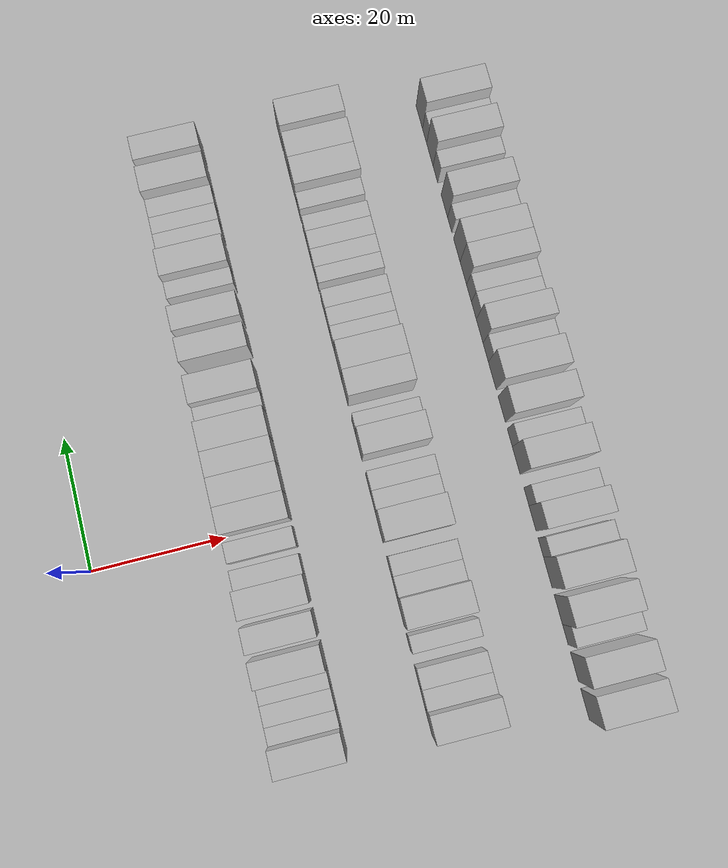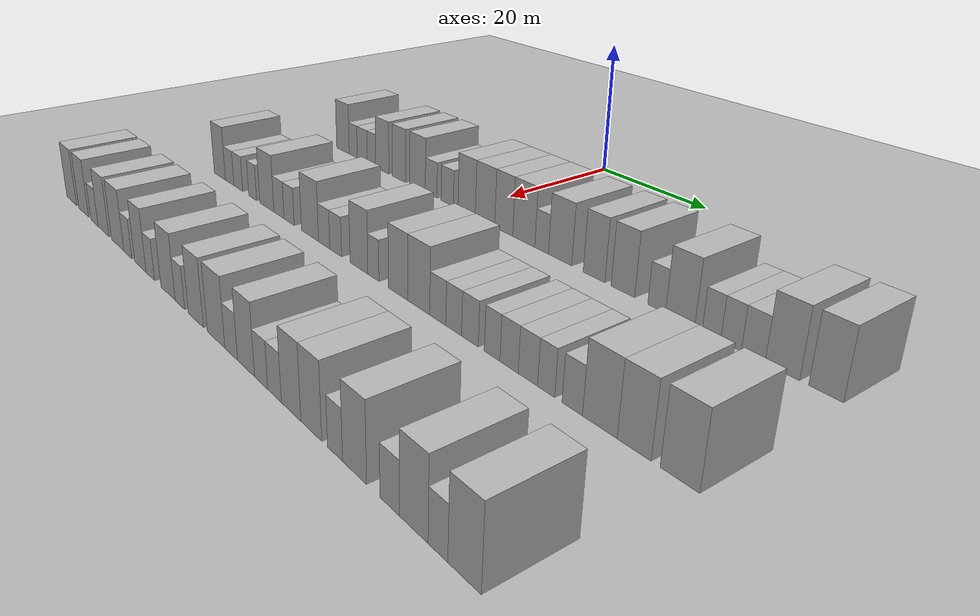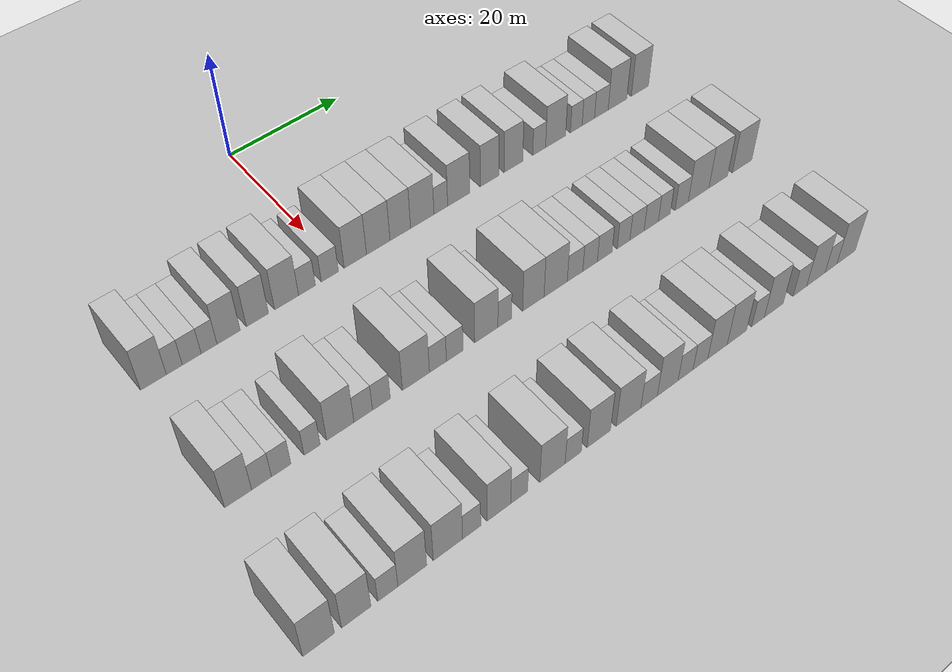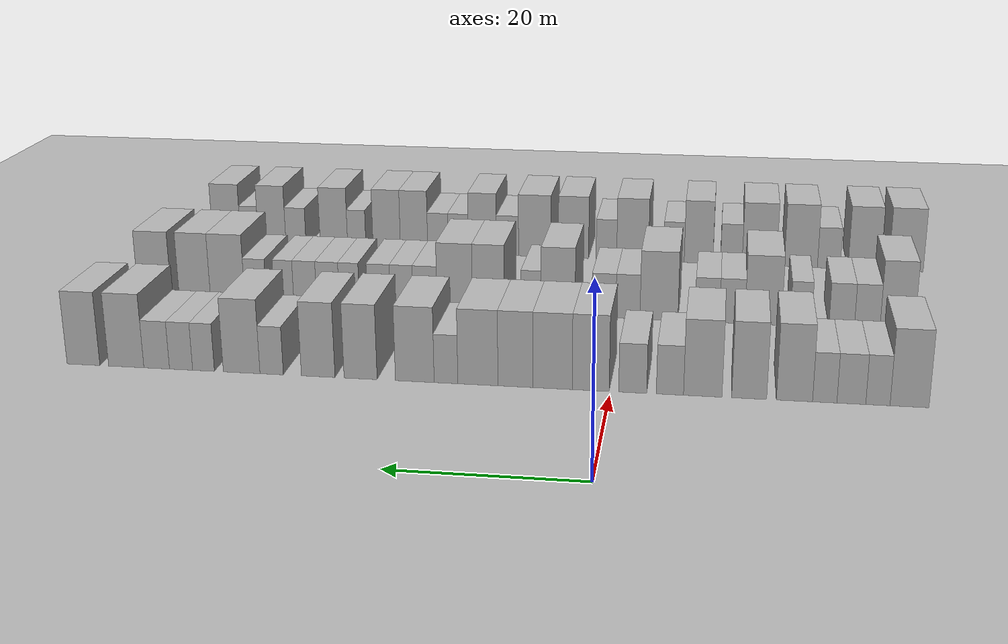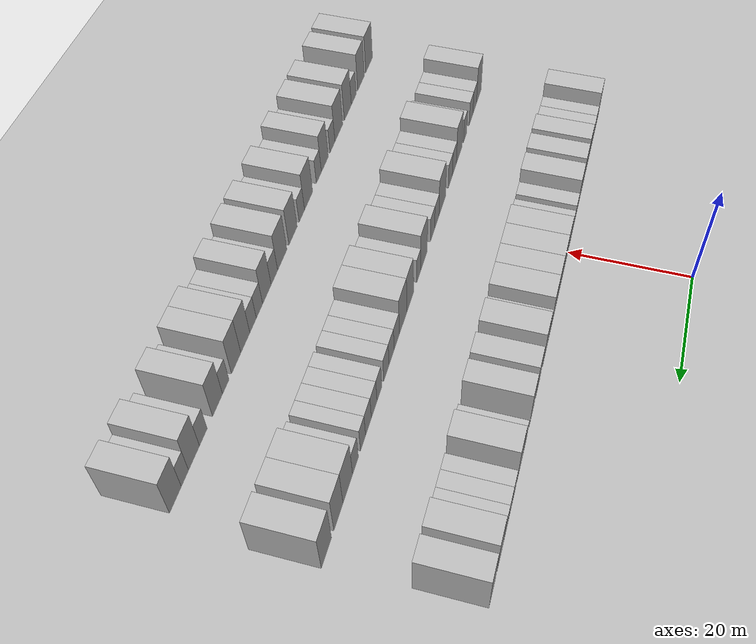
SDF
<sdf version="1.6">
 <world name="default">
  <include><name>ground_plane_1</name><uri>model://HANNAS_ground_plane</uri></include>
  <include>
   <name>ground_plane_2</name>
   <uri>model://HANNAS_ground_plane</uri>
   <pose>100 0 0  0 0 0</pose>
  </include>
  <model name="building_54">
   <static>1</static>
   <pose>25.0000 -30.8141 0 0.000000 0.000000 0.000000</pose>
   <link name="link">
    <pose>0 0 4.50 0 0 0</pose>
    <collision name="collision"><geometry><box><size>10.0000 3.9146 9.0000</size></box></geometry></collision>
    <visual name="visual">
     <cast_shadows>0</cast_shadows>
     <geometry><box><size>10.0000 3.9146 9.0000</size></box></geometry>
     <material>
      <script>
       <uri>model://HANNAS_wall/materials/scripts</uri>
       <uri>model://HANNAS_wall/materials/textures</uri>
       <name>vrc/HANNAS_wall</name>
      </script>
     </material>
    </visual>
   </link>
  </model>
  <model name="building_55">
   <static>1</static>
   <pose>25.0000 -27.6327 0 0.000000 0.000000 0.000000</pose>
   <link name="link">
    <pose>0 0 3.00 0 0 0</pose>
    <collision name="collision"><geometry><box><size>10.0000 2.4482 6.0000</size></box></geometry></collision>
    <visual name="visual">
     <cast_shadows>0</cast_shadows>
     <geometry><box><size>10.0000 2.4482 6.0000</size></box></geometry>
     <material>
      <script>
       <uri>model://HANNAS_wall/materials/scripts</uri>
       <uri>model://HANNAS_wall/materials/textures</uri>
       <name>vrc/HANNAS_wall</name>
      </script>
     </material>
    </visual>
   </link>
  </model>
  <model name="building_56">
   <static>1</static>
   <pose>25.0000 -24.9484 0 0.000000 0.000000 0.000000</pose>
   <link name="link">
    <pose>0 0 3.00 0 0 0</pose>
    <collision name="collision"><geometry><box><size>10.0000 2.9204 6.0000</size></box></geometry></collision>
    <visual name="visual">
     <cast_shadows>0</cast_shadows>
     <geometry><box><size>10.0000 2.9204 6.0000</size></box></geometry>
     <material>
      <script>
       <uri>model://HANNAS_wall/materials/scripts</uri>
       <uri>model://HANNAS_wall/materials/textures</uri>
       <name>vrc/HANNAS_wall</name>
      </script>
     </material>
    </visual>
   </link>
  </model>
  <model name="building_57">
   <static>1</static>
   <pose>25.0000 -22.2467 0 0.000000 0.000000 0.000000</pose>
   <link name="link">
    <pose>0 0 3.00 0 0 0</pose>
    <collision name="collision"><geometry><box><size>10.0000 2.4829 6.0000</size></box></geometry></collision>
    <visual name="visual">
     <cast_shadows>0</cast_shadows>
     <geometry><box><size>10.0000 2.4829 6.0000</size></box></geometry>
     <material>
      <script>
       <uri>model://HANNAS_wall/materials/scripts</uri>
       <uri>model://HANNAS_wall/materials/textures</uri>
       <name>vrc/HANNAS_wall</name>
      </script>
     </material>
    </visual>
   </link>
  </model>
  <model name="building_58">
   <static>1</static>
   <pose>25.0000 -19.1601 0 0.000000 0.000000 0.000000</pose>
   <link name="link">
    <pose>0 0 4.50 0 0 0</pose>
    <collision name="collision"><geometry><box><size>10.0000 3.6903 9.0000</size></box></geometry></collision>
    <visual name="visual">
     <cast_shadows>0</cast_shadows>
     <geometry><box><size>10.0000 3.6903 9.0000</size></box></geometry>
     <material>
      <script>
       <uri>model://HANNAS_wall/materials/scripts</uri>
       <uri>model://HANNAS_wall/materials/textures</uri>
       <name>vrc/HANNAS_wall</name>
      </script>
     </material>
    </visual>
   </link>
  </model>
  <model name="building_59">
   <static>1</static>
   <pose>25.0000 -14.5144 0 0.000000 0.000000 0.000000</pose>
   <link name="link">
    <pose>0 0 4.50 0 0 0</pose>
    <collision name="collision"><geometry><box><size>10.0000 3.6012 9.0000</size></box></geometry></collision>
    <visual name="visual">
     <cast_shadows>0</cast_shadows>
     <geometry><box><size>10.0000 3.6012 9.0000</size></box></geometry>
     <material>
      <script>
       <uri>model://HANNAS_wall/materials/scripts</uri>
       <uri>model://HANNAS_wall/materials/textures</uri>
       <name>vrc/HANNAS_wall</name>
      </script>
     </material>
    </visual>
   </link>
  </model>
  <model name="building_60">
   <static>1</static>
   <pose>25.0000 -9.7171 0 0.000000 0.000000 0.000000</pose>
   <link name="link">
    <pose>0 0 4.50 0 0 0</pose>
    <collision name="collision"><geometry><box><size>10.0000 3.9933 9.0000</size></box></geometry></collision>
    <visual name="visual">
     <cast_shadows>0</cast_shadows>
     <geometry><box><size>10.0000 3.9933 9.0000</size></box></geometry>
     <material>
      <script>
       <uri>model://HANNAS_wall/materials/scripts</uri>
       <uri>model://HANNAS_wall/materials/textures</uri>
       <name>vrc/HANNAS_wall</name>
      </script>
     </material>
    </visual>
   </link>
  </model>
  <model name="building_61">
   <static>1</static>
   <pose>25.0000 -6.3009 0 0.000000 0.000000 0.000000</pose>
   <link name="link">
    <pose>0 0 3.00 0 0 0</pose>
    <collision name="collision"><geometry><box><size>10.0000 2.8391 6.0000</size></box></geometry></collision>
    <visual name="visual">
     <cast_shadows>0</cast_shadows>
     <geometry><box><size>10.0000 2.8391 6.0000</size></box></geometry>
     <material>
      <script>
       <uri>model://HANNAS_wall/materials/scripts</uri>
       <uri>model://HANNAS_wall/materials/textures</uri>
       <name>vrc/HANNAS_wall</name>
      </script>
     </material>
    </visual>
   </link>
  </model>
  <model name="building_62">
   <static>1</static>
   <pose>25.0000 -2.4091 0 0.000000 0.000000 0.000000</pose>
   <link name="link">
    <pose>0 0 3.00 0 0 0</pose>
    <collision name="collision"><geometry><box><size>10.0000 2.9446 6.0000</size></box></geometry></collision>
    <visual name="visual">
     <cast_shadows>0</cast_shadows>
     <geometry><box><size>10.0000 2.9446 6.0000</size></box></geometry>
     <material>
      <script>
       <uri>model://HANNAS_wall/materials/scripts</uri>
       <uri>model://HANNAS_wall/materials/textures</uri>
       <name>vrc/HANNAS_wall</name>
      </script>
     </material>
    </visual>
   </link>
  </model>
  <model name="building_63">
   <static>1</static>
   <pose>25.0000 2.0167 0 0.000000 0.000000 0.000000</pose>
   <link name="link">
    <pose>0 0 4.50 0 0 0</pose>
    <collision name="collision"><geometry><box><size>10.0000 3.9069 9.0000</size></box></geometry></collision>
    <visual name="visual">
     <cast_shadows>0</cast_shadows>
     <geometry><box><size>10.0000 3.9069 9.0000</size></box></geometry>
     <material>
      <script>
       <uri>model://HANNAS_wall/materials/scripts</uri>
       <uri>model://HANNAS_wall/materials/textures</uri>
       <name>vrc/HANNAS_wall</name>
      </script>
     </material>
    </visual>
   </link>
  </model>
  <model name="building_64">
   <static>1</static>
   <pose>25.0000 6.0637 0 0.000000 0.000000 0.000000</pose>
   <link name="link">
    <pose>0 0 4.50 0 0 0</pose>
    <collision name="collision"><geometry><box><size>10.0000 4.1870 9.0000</size></box></geometry></collision>
    <visual name="visual">
     <cast_shadows>0</cast_shadows>
     <geometry><box><size>10.0000 4.1870 9.0000</size></box></geometry>
     <material>
      <script>
       <uri>model://HANNAS_wall/materials/scripts</uri>
       <uri>model://HANNAS_wall/materials/textures</uri>
       <name>vrc/HANNAS_wall</name>
      </script>
     </material>
    </visual>
   </link>
  </model>
  <model name="building_65">
   <static>1</static>
   <pose>25.0000 10.0209 0 0.000000 0.000000 0.000000</pose>
   <link name="link">
    <pose>0 0 4.50 0 0 0</pose>
    <collision name="collision"><geometry><box><size>10.0000 3.7274 9.0000</size></box></geometry></collision>
    <visual name="visual">
     <cast_shadows>0</cast_shadows>
     <geometry><box><size>10.0000 3.7274 9.0000</size></box></geometry>
     <material>
      <script>
       <uri>model://HANNAS_wall/materials/scripts</uri>
       <uri>model://HANNAS_wall/materials/textures</uri>
       <name>vrc/HANNAS_wall</name>
      </script>
     </material>
    </visual>
   </link>
  </model>
  <model name="building_66">
   <static>1</static>
   <pose>25.0000 14.0433 0 0.000000 0.000000 0.000000</pose>
   <link name="link">
    <pose>0 0 4.50 0 0 0</pose>
    <collision name="collision"><geometry><box><size>10.0000 4.3173 9.0000</size></box></geometry></collision>
    <visual name="visual">
     <cast_shadows>0</cast_shadows>
     <geometry><box><size>10.0000 4.3173 9.0000</size></box></geometry>
     <material>
      <script>
       <uri>model://HANNAS_wall/materials/scripts</uri>
       <uri>model://HANNAS_wall/materials/textures</uri>
       <name>vrc/HANNAS_wall</name>
      </script>
     </material>
    </visual>
   </link>
  </model>
  <model name="building_67">
   <static>1</static>
   <pose>25.0000 17.4818 0 0.000000 0.000000 0.000000</pose>
   <link name="link">
    <pose>0 0 3.00 0 0 0</pose>
    <collision name="collision"><geometry><box><size>10.0000 2.5597 6.0000</size></box></geometry></collision>
    <visual name="visual">
     <cast_shadows>0</cast_shadows>
     <geometry><box><size>10.0000 2.5597 6.0000</size></box></geometry>
     <material>
      <script>
       <uri>model://HANNAS_wall/materials/scripts</uri>
       <uri>model://HANNAS_wall/materials/textures</uri>
       <name>vrc/HANNAS_wall</name>
      </script>
     </material>
    </visual>
   </link>
  </model>
  <model name="building_68">
   <static>1</static>
   <pose>25.0000 20.8657 0 0.000000 0.000000 0.000000</pose>
   <link name="link">
    <pose>0 0 4.50 0 0 0</pose>
    <collision name="collision"><geometry><box><size>10.0000 4.2083 9.0000</size></box></geometry></collision>
    <visual name="visual">
     <cast_shadows>0</cast_shadows>
     <geometry><box><size>10.0000 4.2083 9.0000</size></box></geometry>
     <material>
      <script>
       <uri>model://HANNAS_wall/materials/scripts</uri>
       <uri>model://HANNAS_wall/materials/textures</uri>
       <name>vrc/HANNAS_wall</name>
      </script>
     </material>
    </visual>
   </link>
  </model>
  <model name="building_69">
   <static>1</static>
   <pose>25.0000 26.7829 0 0.000000 0.000000 0.000000</pose>
   <link name="link">
    <pose>0 0 4.50 0 0 0</pose>
    <collision name="collision"><geometry><box><size>10.0000 3.6260 9.0000</size></box></geometry></collision>
    <visual name="visual">
     <cast_shadows>0</cast_shadows>
     <geometry><box><size>10.0000 3.6260 9.0000</size></box></geometry>
     <material>
      <script>
       <uri>model://HANNAS_wall/materials/scripts</uri>
       <uri>model://HANNAS_wall/materials/textures</uri>
       <name>vrc/HANNAS_wall</name>
      </script>
     </material>
    </visual>
   </link>
  </model>
  <model name="building_70">
   <static>1</static>
   <pose>25.0000 31.4533 0 0.000000 0.000000 0.000000</pose>
   <link name="link">
    <pose>0 0 4.50 0 0 0</pose>
    <collision name="collision"><geometry><box><size>10.0000 3.7148 9.0000</size></box></geometry></collision>
    <visual name="visual">
     <cast_shadows>0</cast_shadows>
     <geometry><box><size>10.0000 3.7148 9.0000</size></box></geometry>
     <material>
      <script>
       <uri>model://HANNAS_wall/materials/scripts</uri>
       <uri>model://HANNAS_wall/materials/textures</uri>
       <name>vrc/HANNAS_wall</name>
      </script>
     </material>
    </visual>
   </link>
  </model>
  <model name="building_71">
   <static>1</static>
   <pose>25.0000 36.6122 0 0.000000 0.000000 0.000000</pose>
   <link name="link">
    <pose>0 0 3.00 0 0 0</pose>
    <collision name="collision"><geometry><box><size>10.0000 2.6030 6.0000</size></box></geometry></collision>
    <visual name="visual">
     <cast_shadows>0</cast_shadows>
     <geometry><box><size>10.0000 2.6030 6.0000</size></box></geometry>
     <material>
      <script>
       <uri>model://HANNAS_wall/materials/scripts</uri>
       <uri>model://HANNAS_wall/materials/textures</uri>
       <name>vrc/HANNAS_wall</name>
      </script>
     </material>
    </visual>
   </link>
  </model>
  <model name="building_72">
   <static>1</static>
   <pose>25.0000 39.9638 0 0.000000 0.000000 0.000000</pose>
   <link name="link">
    <pose>0 0 4.50 0 0 0</pose>
    <collision name="collision"><geometry><box><size>10.0000 4.1002 9.0000</size></box></geometry></collision>
    <visual name="visual">
     <cast_shadows>0</cast_shadows>
     <geometry><box><size>10.0000 4.1002 9.0000</size></box></geometry>
     <material>
      <script>
       <uri>model://HANNAS_wall/materials/scripts</uri>
       <uri>model://HANNAS_wall/materials/textures</uri>
       <name>vrc/HANNAS_wall</name>
      </script>
     </material>
    </visual>
   </link>
  </model>
  <model name="building_73">
   <static>1</static>
   <pose>25.0000 44.2410 0 0.000000 0.000000 0.000000</pose>
   <link name="link">
    <pose>0 0 3.00 0 0 0</pose>
    <collision name="collision"><geometry><box><size>10.0000 2.4542 6.0000</size></box></geometry></collision>
    <visual name="visual">
     <cast_shadows>0</cast_shadows>
     <geometry><box><size>10.0000 2.4542 6.0000</size></box></geometry>
     <material>
      <script>
       <uri>model://HANNAS_wall/materials/scripts</uri>
       <uri>model://HANNAS_wall/materials/textures</uri>
       <name>vrc/HANNAS_wall</name>
      </script>
     </material>
    </visual>
   </link>
  </model>
  <model name="building_74">
   <static>1</static>
   <pose>25.0000 46.7785 0 0.000000 0.000000 0.000000</pose>
   <link name="link">
    <pose>0 0 3.00 0 0 0</pose>
    <collision name="collision"><geometry><box><size>10.0000 2.6208 6.0000</size></box></geometry></collision>
    <visual name="visual">
     <cast_shadows>0</cast_shadows>
     <geometry><box><size>10.0000 2.6208 6.0000</size></box></geometry>
     <material>
      <script>
       <uri>model://HANNAS_wall/materials/scripts</uri>
       <uri>model://HANNAS_wall/materials/textures</uri>
       <name>vrc/HANNAS_wall</name>
      </script>
     </material>
    </visual>
   </link>
  </model>
  <model name="building_75">
   <static>1</static>
   <pose>25.0000 49.5413 0 0.000000 0.000000 0.000000</pose>
   <link name="link">
    <pose>0 0 3.00 0 0 0</pose>
    <collision name="collision"><geometry><box><size>10.0000 2.9047 6.0000</size></box></geometry></collision>
    <visual name="visual">
     <cast_shadows>0</cast_shadows>
     <geometry><box><size>10.0000 2.9047 6.0000</size></box></geometry>
     <material>
      <script>
       <uri>model://HANNAS_wall/materials/scripts</uri>
       <uri>model://HANNAS_wall/materials/textures</uri>
       <name>vrc/HANNAS_wall</name>
      </script>
     </material>
    </visual>
   </link>
  </model>
  <model name="building_76">
   <static>1</static>
   <pose>25.0000 53.0043 0 0.000000 0.000000 0.000000</pose>
   <link name="link">
    <pose>0 0 4.50 0 0 0</pose>
    <collision name="collision"><geometry><box><size>10.0000 4.0213 9.0000</size></box></geometry></collision>
    <visual name="visual">
     <cast_shadows>0</cast_shadows>
     <geometry><box><size>10.0000 4.0213 9.0000</size></box></geometry>
     <material>
      <script>
       <uri>model://HANNAS_wall/materials/scripts</uri>
       <uri>model://HANNAS_wall/materials/textures</uri>
       <name>vrc/HANNAS_wall</name>
      </script>
     </material>
    </visual>
   </link>
  </model>
  <model name="building_77">
   <static>1</static>
   <pose>25.0000 57.8981 0 0.000000 0.000000 0.000000</pose>
   <link name="link">
    <pose>0 0 4.50 0 0 0</pose>
    <collision name="collision"><geometry><box><size>10.0000 3.7663 9.0000</size></box></geometry></collision>
    <visual name="visual">
     <cast_shadows>0</cast_shadows>
     <geometry><box><size>10.0000 3.7663 9.0000</size></box></geometry>
     <material>
      <script>
       <uri>model://HANNAS_wall/materials/scripts</uri>
       <uri>model://HANNAS_wall/materials/textures</uri>
       <name>vrc/HANNAS_wall</name>
      </script>
     </material>
    </visual>
   </link>
  </model>
  <model name="building_171">
   <static>1</static>
   <pose>47.0000 -31.7424 0 0.000000 0.000000 0.000000</pose>
   <link name="link">
    <pose>0 0 4.50 0 0 0</pose>
    <collision name="collision"><geometry><box><size>10.0000 3.9455 9.0000</size></box></geometry></collision>
    <visual name="visual">
     <cast_shadows>0</cast_shadows>
     <geometry><box><size>10.0000 3.9455 9.0000</size></box></geometry>
     <material>
      <script>
       <uri>model://HANNAS_wall/materials/scripts</uri>
       <uri>model://HANNAS_wall/materials/textures</uri>
       <name>vrc/HANNAS_wall</name>
      </script>
     </material>
    </visual>
   </link>
  </model>
  <model name="building_172">
   <static>1</static>
   <pose>47.0000 -28.3073 0 0.000000 0.000000 0.000000</pose>
   <link name="link">
    <pose>0 0 3.00 0 0 0</pose>
    <collision name="collision"><geometry><box><size>10.0000 2.9247 6.0000</size></box></geometry></collision>
    <visual name="visual">
     <cast_shadows>0</cast_shadows>
     <geometry><box><size>10.0000 2.9247 6.0000</size></box></geometry>
     <material>
      <script>
       <uri>model://HANNAS_wall/materials/scripts</uri>
       <uri>model://HANNAS_wall/materials/textures</uri>
       <name>vrc/HANNAS_wall</name>
      </script>
     </material>
    </visual>
   </link>
  </model>
  <model name="building_173">
   <static>1</static>
   <pose>47.0000 -25.3788 0 0.000000 0.000000 0.000000</pose>
   <link name="link">
    <pose>0 0 3.00 0 0 0</pose>
    <collision name="collision"><geometry><box><size>10.0000 2.9322 6.0000</size></box></geometry></collision>
    <visual name="visual">
     <cast_shadows>0</cast_shadows>
     <geometry><box><size>10.0000 2.9322 6.0000</size></box></geometry>
     <material>
      <script>
       <uri>model://HANNAS_wall/materials/scripts</uri>
       <uri>model://HANNAS_wall/materials/textures</uri>
       <name>vrc/HANNAS_wall</name>
      </script>
     </material>
    </visual>
   </link>
  </model>
  <model name="building_174">
   <static>1</static>
   <pose>47.0000 -20.6749 0 0.000000 0.000000 0.000000</pose>
   <link name="link">
    <pose>0 0 3.00 0 0 0</pose>
    <collision name="collision"><geometry><box><size>10.0000 2.4757 6.0000</size></box></geometry></collision>
    <visual name="visual">
     <cast_shadows>0</cast_shadows>
     <geometry><box><size>10.0000 2.4757 6.0000</size></box></geometry>
     <material>
      <script>
       <uri>model://HANNAS_wall/materials/scripts</uri>
       <uri>model://HANNAS_wall/materials/textures</uri>
       <name>vrc/HANNAS_wall</name>
      </script>
     </material>
    </visual>
   </link>
  </model>
  <model name="building_175">
   <static>1</static>
   <pose>47.0000 -16.2961 0 0.000000 0.000000 0.000000</pose>
   <link name="link">
    <pose>0 0 4.50 0 0 0</pose>
    <collision name="collision"><geometry><box><size>10.0000 4.2819 9.0000</size></box></geometry></collision>
    <visual name="visual">
     <cast_shadows>0</cast_shadows>
     <geometry><box><size>10.0000 4.2819 9.0000</size></box></geometry>
     <material>
      <script>
       <uri>model://HANNAS_wall/materials/scripts</uri>
       <uri>model://HANNAS_wall/materials/textures</uri>
       <name>vrc/HANNAS_wall</name>
      </script>
     </material>
    </visual>
   </link>
  </model>
  <model name="building_176">
   <static>1</static>
   <pose>47.0000 -12.6715 0 0.000000 0.000000 0.000000</pose>
   <link name="link">
    <pose>0 0 3.00 0 0 0</pose>
    <collision name="collision"><geometry><box><size>10.0000 2.9674 6.0000</size></box></geometry></collision>
    <visual name="visual">
     <cast_shadows>0</cast_shadows>
     <geometry><box><size>10.0000 2.9674 6.0000</size></box></geometry>
     <material>
      <script>
       <uri>model://HANNAS_wall/materials/scripts</uri>
       <uri>model://HANNAS_wall/materials/textures</uri>
       <name>vrc/HANNAS_wall</name>
      </script>
     </material>
    </visual>
   </link>
  </model>
  <model name="building_177">
   <static>1</static>
   <pose>47.0000 -9.7440 0 0.000000 0.000000 0.000000</pose>
   <link name="link">
    <pose>0 0 3.00 0 0 0</pose>
    <collision name="collision"><geometry><box><size>10.0000 2.8874 6.0000</size></box></geometry></collision>
    <visual name="visual">
     <cast_shadows>0</cast_shadows>
     <geometry><box><size>10.0000 2.8874 6.0000</size></box></geometry>
     <material>
      <script>
       <uri>model://HANNAS_wall/materials/scripts</uri>
       <uri>model://HANNAS_wall/materials/textures</uri>
       <name>vrc/HANNAS_wall</name>
      </script>
     </material>
    </visual>
   </link>
  </model>
  <model name="building_178">
   <static>1</static>
   <pose>47.0000 -4.0553 0 0.000000 0.000000 0.000000</pose>
   <link name="link">
    <pose>0 0 4.50 0 0 0</pose>
    <collision name="collision"><geometry><box><size>10.0000 4.4900 9.0000</size></box></geometry></collision>
    <visual name="visual">
     <cast_shadows>0</cast_shadows>
     <geometry><box><size>10.0000 4.4900 9.0000</size></box></geometry>
     <material>
      <script>
       <uri>model://HANNAS_wall/materials/scripts</uri>
       <uri>model://HANNAS_wall/materials/textures</uri>
       <name>vrc/HANNAS_wall</name>
      </script>
     </material>
    </visual>
   </link>
  </model>
  <model name="building_179">
   <static>1</static>
   <pose>47.0000 -0.3727 0 0.000000 0.000000 0.000000</pose>
   <link name="link">
    <pose>0 0 3.00 0 0 0</pose>
    <collision name="collision"><geometry><box><size>10.0000 2.8753 6.0000</size></box></geometry></collision>
    <visual name="visual">
     <cast_shadows>0</cast_shadows>
     <geometry><box><size>10.0000 2.8753 6.0000</size></box></geometry>
     <material>
      <script>
       <uri>model://HANNAS_wall/materials/scripts</uri>
       <uri>model://HANNAS_wall/materials/textures</uri>
       <name>vrc/HANNAS_wall</name>
      </script>
     </material>
    </visual>
   </link>
  </model>
  <model name="building_180">
   <static>1</static>
   <pose>47.0000 2.4995 0 0.000000 0.000000 0.000000</pose>
   <link name="link">
    <pose>0 0 3.00 0 0 0</pose>
    <collision name="collision"><geometry><box><size>10.0000 2.8692 6.0000</size></box></geometry></collision>
    <visual name="visual">
     <cast_shadows>0</cast_shadows>
     <geometry><box><size>10.0000 2.8692 6.0000</size></box></geometry>
     <material>
      <script>
       <uri>model://HANNAS_wall/materials/scripts</uri>
       <uri>model://HANNAS_wall/materials/textures</uri>
       <name>vrc/HANNAS_wall</name>
      </script>
     </material>
    </visual>
   </link>
  </model>
  <model name="building_181">
   <static>1</static>
   <pose>47.0000 7.9766 0 0.000000 0.000000 0.000000</pose>
   <link name="link">
    <pose>0 0 4.50 0 0 0</pose>
    <collision name="collision"><geometry><box><size>10.0000 4.0850 9.0000</size></box></geometry></collision>
    <visual name="visual">
     <cast_shadows>0</cast_shadows>
     <geometry><box><size>10.0000 4.0850 9.0000</size></box></geometry>
     <material>
      <script>
       <uri>model://HANNAS_wall/materials/scripts</uri>
       <uri>model://HANNAS_wall/materials/textures</uri>
       <name>vrc/HANNAS_wall</name>
      </script>
     </material>
    </visual>
   </link>
  </model>
  <model name="building_182">
   <static>1</static>
   <pose>47.0000 11.2383 0 0.000000 0.000000 0.000000</pose>
   <link name="link">
    <pose>0 0 3.00 0 0 0</pose>
    <collision name="collision"><geometry><box><size>10.0000 2.4383 6.0000</size></box></geometry></collision>
    <visual name="visual">
     <cast_shadows>0</cast_shadows>
     <geometry><box><size>10.0000 2.4383 6.0000</size></box></geometry>
     <material>
      <script>
       <uri>model://HANNAS_wall/materials/scripts</uri>
       <uri>model://HANNAS_wall/materials/textures</uri>
       <name>vrc/HANNAS_wall</name>
      </script>
     </material>
    </visual>
   </link>
  </model>
  <model name="building_183">
   <static>1</static>
   <pose>47.0000 16.4114 0 0.000000 0.000000 0.000000</pose>
   <link name="link">
    <pose>0 0 4.50 0 0 0</pose>
    <collision name="collision"><geometry><box><size>10.0000 3.9079 9.0000</size></box></geometry></collision>
    <visual name="visual">
     <cast_shadows>0</cast_shadows>
     <geometry><box><size>10.0000 3.9079 9.0000</size></box></geometry>
     <material>
      <script>
       <uri>model://HANNAS_wall/materials/scripts</uri>
       <uri>model://HANNAS_wall/materials/textures</uri>
       <name>vrc/HANNAS_wall</name>
      </script>
     </material>
    </visual>
   </link>
  </model>
  <model name="building_184">
   <static>1</static>
   <pose>47.0000 20.5269 0 0.000000 0.000000 0.000000</pose>
   <link name="link">
    <pose>0 0 4.50 0 0 0</pose>
    <collision name="collision"><geometry><box><size>10.0000 4.3232 9.0000</size></box></geometry></collision>
    <visual name="visual">
     <cast_shadows>0</cast_shadows>
     <geometry><box><size>10.0000 4.3232 9.0000</size></box></geometry>
     <material>
      <script>
       <uri>model://HANNAS_wall/materials/scripts</uri>
       <uri>model://HANNAS_wall/materials/textures</uri>
       <name>vrc/HANNAS_wall</name>
      </script>
     </material>
    </visual>
   </link>
  </model>
  <model name="building_185">
   <static>1</static>
   <pose>47.0000 24.1631 0 0.000000 0.000000 0.000000</pose>
   <link name="link">
    <pose>0 0 3.00 0 0 0</pose>
    <collision name="collision"><geometry><box><size>10.0000 2.9492 6.0000</size></box></geometry></collision>
    <visual name="visual">
     <cast_shadows>0</cast_shadows>
     <geometry><box><size>10.0000 2.9492 6.0000</size></box></geometry>
     <material>
      <script>
       <uri>model://HANNAS_wall/materials/scripts</uri>
       <uri>model://HANNAS_wall/materials/textures</uri>
       <name>vrc/HANNAS_wall</name>
      </script>
     </material>
    </visual>
   </link>
  </model>
  <model name="building_186">
   <static>1</static>
   <pose>47.0000 27.0301 0 0.000000 0.000000 0.000000</pose>
   <link name="link">
    <pose>0 0 3.00 0 0 0</pose>
    <collision name="collision"><geometry><box><size>10.0000 2.7849 6.0000</size></box></geometry></collision>
    <visual name="visual">
     <cast_shadows>0</cast_shadows>
     <geometry><box><size>10.0000 2.7849 6.0000</size></box></geometry>
     <material>
      <script>
       <uri>model://HANNAS_wall/materials/scripts</uri>
       <uri>model://HANNAS_wall/materials/textures</uri>
       <name>vrc/HANNAS_wall</name>
      </script>
     </material>
    </visual>
   </link>
  </model>
  <model name="building_187">
   <static>1</static>
   <pose>47.0000 29.8471 0 0.000000 0.000000 0.000000</pose>
   <link name="link">
    <pose>0 0 3.00 0 0 0</pose>
    <collision name="collision"><geometry><box><size>10.0000 2.8491 6.0000</size></box></geometry></collision>
    <visual name="visual">
     <cast_shadows>0</cast_shadows>
     <geometry><box><size>10.0000 2.8491 6.0000</size></box></geometry>
     <material>
      <script>
       <uri>model://HANNAS_wall/materials/scripts</uri>
       <uri>model://HANNAS_wall/materials/textures</uri>
       <name>vrc/HANNAS_wall</name>
      </script>
     </material>
    </visual>
   </link>
  </model>
  <model name="building_188">
   <static>1</static>
   <pose>47.0000 33.5238 0 0.000000 0.000000 0.000000</pose>
   <link name="link">
    <pose>0 0 3.00 0 0 0</pose>
    <collision name="collision"><geometry><box><size>10.0000 2.5043 6.0000</size></box></geometry></collision>
    <visual name="visual">
     <cast_shadows>0</cast_shadows>
     <geometry><box><size>10.0000 2.5043 6.0000</size></box></geometry>
     <material>
      <script>
       <uri>model://HANNAS_wall/materials/scripts</uri>
       <uri>model://HANNAS_wall/materials/textures</uri>
       <name>vrc/HANNAS_wall</name>
      </script>
     </material>
    </visual>
   </link>
  </model>
  <model name="building_189">
   <static>1</static>
   <pose>47.0000 36.1962 0 0.000000 0.000000 0.000000</pose>
   <link name="link">
    <pose>0 0 3.00 0 0 0</pose>
    <collision name="collision"><geometry><box><size>10.0000 2.8405 6.0000</size></box></geometry></collision>
    <visual name="visual">
     <cast_shadows>0</cast_shadows>
     <geometry><box><size>10.0000 2.8405 6.0000</size></box></geometry>
     <material>
      <script>
       <uri>model://HANNAS_wall/materials/scripts</uri>
       <uri>model://HANNAS_wall/materials/textures</uri>
       <name>vrc/HANNAS_wall</name>
      </script>
     </material>
    </visual>
   </link>
  </model>
  <model name="building_190">
   <static>1</static>
   <pose>47.0000 39.0479 0 0.000000 0.000000 0.000000</pose>
   <link name="link">
    <pose>0 0 3.00 0 0 0</pose>
    <collision name="collision"><geometry><box><size>10.0000 2.8628 6.0000</size></box></geometry></collision>
    <visual name="visual">
     <cast_shadows>0</cast_shadows>
     <geometry><box><size>10.0000 2.8628 6.0000</size></box></geometry>
     <material>
      <script>
       <uri>model://HANNAS_wall/materials/scripts</uri>
       <uri>model://HANNAS_wall/materials/textures</uri>
       <name>vrc/HANNAS_wall</name>
      </script>
     </material>
    </visual>
   </link>
  </model>
  <model name="building_191">
   <static>1</static>
   <pose>47.0000 41.6999 0 0.000000 0.000000 0.000000</pose>
   <link name="link">
    <pose>0 0 3.00 0 0 0</pose>
    <collision name="collision"><geometry><box><size>10.0000 2.4411 6.0000</size></box></geometry></collision>
    <visual name="visual">
     <cast_shadows>0</cast_shadows>
     <geometry><box><size>10.0000 2.4411 6.0000</size></box></geometry>
     <material>
      <script>
       <uri>model://HANNAS_wall/materials/scripts</uri>
       <uri>model://HANNAS_wall/materials/textures</uri>
       <name>vrc/HANNAS_wall</name>
      </script>
     </material>
    </visual>
   </link>
  </model>
  <model name="building_192">
   <static>1</static>
   <pose>47.0000 45.2905 0 0.000000 0.000000 0.000000</pose>
   <link name="link">
    <pose>0 0 3.00 0 0 0</pose>
    <collision name="collision"><geometry><box><size>10.0000 2.7401 6.0000</size></box></geometry></collision>
    <visual name="visual">
     <cast_shadows>0</cast_shadows>
     <geometry><box><size>10.0000 2.7401 6.0000</size></box></geometry>
     <material>
      <script>
       <uri>model://HANNAS_wall/materials/scripts</uri>
       <uri>model://HANNAS_wall/materials/textures</uri>
       <name>vrc/HANNAS_wall</name>
      </script>
     </material>
    </visual>
   </link>
  </model>
  <model name="building_193">
   <static>1</static>
   <pose>47.0000 48.8434 0 0.000000 0.000000 0.000000</pose>
   <link name="link">
    <pose>0 0 4.50 0 0 0</pose>
    <collision name="collision"><geometry><box><size>10.0000 4.3658 9.0000</size></box></geometry></collision>
    <visual name="visual">
     <cast_shadows>0</cast_shadows>
     <geometry><box><size>10.0000 4.3658 9.0000</size></box></geometry>
     <material>
      <script>
       <uri>model://HANNAS_wall/materials/scripts</uri>
       <uri>model://HANNAS_wall/materials/textures</uri>
       <name>vrc/HANNAS_wall</name>
      </script>
     </material>
    </visual>
   </link>
  </model>
  <model name="building_194">
   <static>1</static>
   <pose>47.0000 53.0233 0 0.000000 0.000000 0.000000</pose>
   <link name="link">
    <pose>0 0 4.50 0 0 0</pose>
    <collision name="collision"><geometry><box><size>10.0000 3.9940 9.0000</size></box></geometry></collision>
    <visual name="visual">
     <cast_shadows>0</cast_shadows>
     <geometry><box><size>10.0000 3.9940 9.0000</size></box></geometry>
     <material>
      <script>
       <uri>model://HANNAS_wall/materials/scripts</uri>
       <uri>model://HANNAS_wall/materials/textures</uri>
       <name>vrc/HANNAS_wall</name>
      </script>
     </material>
    </visual>
   </link>
  </model>
  <model name="building_195">
   <static>1</static>
   <pose>47.0000 58.1542 0 0.000000 0.000000 0.000000</pose>
   <link name="link">
    <pose>0 0 4.50 0 0 0</pose>
    <collision name="collision"><geometry><box><size>10.0000 4.2679 9.0000</size></box></geometry></collision>
    <visual name="visual">
     <cast_shadows>0</cast_shadows>
     <geometry><box><size>10.0000 4.2679 9.0000</size></box></geometry>
     <material>
      <script>
       <uri>model://HANNAS_wall/materials/scripts</uri>
       <uri>model://HANNAS_wall/materials/textures</uri>
       <name>vrc/HANNAS_wall</name>
      </script>
     </material>
    </visual>
   </link>
  </model>
  <model name="building_293">
   <static>1</static>
   <pose>69.0000 -35.0175 0 0.000000 0.000000 0.000000</pose>
   <link name="link">
    <pose>0 0 4.50 0 0 0</pose>
    <collision name="collision"><geometry><box><size>10.0000 4.4062 9.0000</size></box></geometry></collision>
    <visual name="visual">
     <cast_shadows>0</cast_shadows>
     <geometry><box><size>10.0000 4.4062 9.0000</size></box></geometry>
     <material>
      <script>
       <uri>model://HANNAS_wall/materials/scripts</uri>
       <uri>model://HANNAS_wall/materials/textures</uri>
       <name>vrc/HANNAS_wall</name>
      </script>
     </material>
    </visual>
   </link>
  </model>
  <model name="building_294">
   <static>1</static>
   <pose>69.0000 -29.7183 0 0.000000 0.000000 0.000000</pose>
   <link name="link">
    <pose>0 0 4.50 0 0 0</pose>
    <collision name="collision"><geometry><box><size>10.0000 4.1921 9.0000</size></box></geometry></collision>
    <visual name="visual">
     <cast_shadows>0</cast_shadows>
     <geometry><box><size>10.0000 4.1921 9.0000</size></box></geometry>
     <material>
      <script>
       <uri>model://HANNAS_wall/materials/scripts</uri>
       <uri>model://HANNAS_wall/materials/textures</uri>
       <name>vrc/HANNAS_wall</name>
      </script>
     </material>
    </visual>
   </link>
  </model>
  <model name="building_295">
   <static>1</static>
   <pose>69.0000 -25.1523 0 0.000000 0.000000 0.000000</pose>
   <link name="link">
    <pose>0 0 3.00 0 0 0</pose>
    <collision name="collision"><geometry><box><size>10.0000 2.9400 6.0000</size></box></geometry></collision>
    <visual name="visual">
     <cast_shadows>0</cast_shadows>
     <geometry><box><size>10.0000 2.9400 6.0000</size></box></geometry>
     <material>
      <script>
       <uri>model://HANNAS_wall/materials/scripts</uri>
       <uri>model://HANNAS_wall/materials/textures</uri>
       <name>vrc/HANNAS_wall</name>
      </script>
     </material>
    </visual>
   </link>
  </model>
  <model name="building_296">
   <static>1</static>
   <pose>69.0000 -21.5404 0 0.000000 0.000000 0.000000</pose>
   <link name="link">
    <pose>0 0 4.50 0 0 0</pose>
    <collision name="collision"><geometry><box><size>10.0000 4.2836 9.0000</size></box></geometry></collision>
    <visual name="visual">
     <cast_shadows>0</cast_shadows>
     <geometry><box><size>10.0000 4.2836 9.0000</size></box></geometry>
     <material>
      <script>
       <uri>model://HANNAS_wall/materials/scripts</uri>
       <uri>model://HANNAS_wall/materials/textures</uri>
       <name>vrc/HANNAS_wall</name>
      </script>
     </material>
    </visual>
   </link>
  </model>
  <model name="building_297">
   <static>1</static>
   <pose>69.0000 -16.1501 0 0.000000 0.000000 0.000000</pose>
   <link name="link">
    <pose>0 0 4.50 0 0 0</pose>
    <collision name="collision"><geometry><box><size>10.0000 4.4970 9.0000</size></box></geometry></collision>
    <visual name="visual">
     <cast_shadows>0</cast_shadows>
     <geometry><box><size>10.0000 4.4970 9.0000</size></box></geometry>
     <material>
      <script>
       <uri>model://HANNAS_wall/materials/scripts</uri>
       <uri>model://HANNAS_wall/materials/textures</uri>
       <name>vrc/HANNAS_wall</name>
      </script>
     </material>
    </visual>
   </link>
  </model>
  <model name="building_298">
   <static>1</static>
   <pose>69.0000 -12.4903 0 0.000000 0.000000 0.000000</pose>
   <link name="link">
    <pose>0 0 3.00 0 0 0</pose>
    <collision name="collision"><geometry><box><size>10.0000 2.8227 6.0000</size></box></geometry></collision>
    <visual name="visual">
     <cast_shadows>0</cast_shadows>
     <geometry><box><size>10.0000 2.8227 6.0000</size></box></geometry>
     <material>
      <script>
       <uri>model://HANNAS_wall/materials/scripts</uri>
       <uri>model://HANNAS_wall/materials/textures</uri>
       <name>vrc/HANNAS_wall</name>
      </script>
     </material>
    </visual>
   </link>
  </model>
  <model name="building_299">
   <static>1</static>
   <pose>69.0000 -8.1899 0 0.000000 0.000000 0.000000</pose>
   <link name="link">
    <pose>0 0 4.50 0 0 0</pose>
    <collision name="collision"><geometry><box><size>10.0000 3.7782 9.0000</size></box></geometry></collision>
    <visual name="visual">
     <cast_shadows>0</cast_shadows>
     <geometry><box><size>10.0000 3.7782 9.0000</size></box></geometry>
     <material>
      <script>
       <uri>model://HANNAS_wall/materials/scripts</uri>
       <uri>model://HANNAS_wall/materials/textures</uri>
       <name>vrc/HANNAS_wall</name>
      </script>
     </material>
    </visual>
   </link>
  </model>
  <model name="building_300">
   <static>1</static>
   <pose>69.0000 -4.9347 0 0.000000 0.000000 0.000000</pose>
   <link name="link">
    <pose>0 0 3.00 0 0 0</pose>
    <collision name="collision"><geometry><box><size>10.0000 2.7321 6.0000</size></box></geometry></collision>
    <visual name="visual">
     <cast_shadows>0</cast_shadows>
     <geometry><box><size>10.0000 2.7321 6.0000</size></box></geometry>
     <material>
      <script>
       <uri>model://HANNAS_wall/materials/scripts</uri>
       <uri>model://HANNAS_wall/materials/textures</uri>
       <name>vrc/HANNAS_wall</name>
      </script>
     </material>
    </visual>
   </link>
  </model>
  <model name="building_301">
   <static>1</static>
   <pose>69.0000 0.5396 0 0.000000 0.000000 0.000000</pose>
   <link name="link">
    <pose>0 0 4.50 0 0 0</pose>
    <collision name="collision"><geometry><box><size>10.0000 4.2165 9.0000</size></box></geometry></collision>
    <visual name="visual">
     <cast_shadows>0</cast_shadows>
     <geometry><box><size>10.0000 4.2165 9.0000</size></box></geometry>
     <material>
      <script>
       <uri>model://HANNAS_wall/materials/scripts</uri>
       <uri>model://HANNAS_wall/materials/textures</uri>
       <name>vrc/HANNAS_wall</name>
      </script>
     </material>
    </visual>
   </link>
  </model>
  <model name="building_302">
   <static>1</static>
   <pose>69.0000 4.0239 0 0.000000 0.000000 0.000000</pose>
   <link name="link">
    <pose>0 0 3.00 0 0 0</pose>
    <collision name="collision"><geometry><box><size>10.0000 2.7520 6.0000</size></box></geometry></collision>
    <visual name="visual">
     <cast_shadows>0</cast_shadows>
     <geometry><box><size>10.0000 2.7520 6.0000</size></box></geometry>
     <material>
      <script>
       <uri>model://HANNAS_wall/materials/scripts</uri>
       <uri>model://HANNAS_wall/materials/textures</uri>
       <name>vrc/HANNAS_wall</name>
      </script>
     </material>
    </visual>
   </link>
  </model>
  <model name="building_303">
   <static>1</static>
   <pose>69.0000 8.4220 0 0.000000 0.000000 0.000000</pose>
   <link name="link">
    <pose>0 0 4.50 0 0 0</pose>
    <collision name="collision"><geometry><box><size>10.0000 4.0442 9.0000</size></box></geometry></collision>
    <visual name="visual">
     <cast_shadows>0</cast_shadows>
     <geometry><box><size>10.0000 4.0442 9.0000</size></box></geometry>
     <material>
      <script>
       <uri>model://HANNAS_wall/materials/scripts</uri>
       <uri>model://HANNAS_wall/materials/textures</uri>
       <name>vrc/HANNAS_wall</name>
      </script>
     </material>
    </visual>
   </link>
  </model>
  <model name="building_304">
   <static>1</static>
   <pose>69.0000 13.6377 0 0.000000 0.000000 0.000000</pose>
   <link name="link">
    <pose>0 0 4.50 0 0 0</pose>
    <collision name="collision"><geometry><box><size>10.0000 4.3872 9.0000</size></box></geometry></collision>
    <visual name="visual">
     <cast_shadows>0</cast_shadows>
     <geometry><box><size>10.0000 4.3872 9.0000</size></box></geometry>
     <material>
      <script>
       <uri>model://HANNAS_wall/materials/scripts</uri>
       <uri>model://HANNAS_wall/materials/textures</uri>
       <name>vrc/HANNAS_wall</name>
      </script>
     </material>
    </visual>
   </link>
  </model>
  <model name="building_305">
   <static>1</static>
   <pose>69.0000 17.3244 0 0.000000 0.000000 0.000000</pose>
   <link name="link">
    <pose>0 0 3.00 0 0 0</pose>
    <collision name="collision"><geometry><box><size>10.0000 2.9862 6.0000</size></box></geometry></collision>
    <visual name="visual">
     <cast_shadows>0</cast_shadows>
     <geometry><box><size>10.0000 2.9862 6.0000</size></box></geometry>
     <material>
      <script>
       <uri>model://HANNAS_wall/materials/scripts</uri>
       <uri>model://HANNAS_wall/materials/textures</uri>
       <name>vrc/HANNAS_wall</name>
      </script>
     </material>
    </visual>
   </link>
  </model>
  <model name="building_306">
   <static>1</static>
   <pose>69.0000 20.7251 0 0.000000 0.000000 0.000000</pose>
   <link name="link">
    <pose>0 0 4.50 0 0 0</pose>
    <collision name="collision"><geometry><box><size>10.0000 3.8153 9.0000</size></box></geometry></collision>
    <visual name="visual">
     <cast_shadows>0</cast_shadows>
     <geometry><box><size>10.0000 3.8153 9.0000</size></box></geometry>
     <material>
      <script>
       <uri>model://HANNAS_wall/materials/scripts</uri>
       <uri>model://HANNAS_wall/materials/textures</uri>
       <name>vrc/HANNAS_wall</name>
      </script>
     </material>
    </visual>
   </link>
  </model>
  <model name="building_307">
   <static>1</static>
   <pose>69.0000 24.0301 0 0.000000 0.000000 0.000000</pose>
   <link name="link">
    <pose>0 0 3.00 0 0 0</pose>
    <collision name="collision"><geometry><box><size>10.0000 2.7947 6.0000</size></box></geometry></collision>
    <visual name="visual">
     <cast_shadows>0</cast_shadows>
     <geometry><box><size>10.0000 2.7947 6.0000</size></box></geometry>
     <material>
      <script>
       <uri>model://HANNAS_wall/materials/scripts</uri>
       <uri>model://HANNAS_wall/materials/textures</uri>
       <name>vrc/HANNAS_wall</name>
      </script>
     </material>
    </visual>
   </link>
  </model>
  <model name="building_308">
   <static>1</static>
   <pose>69.0000 26.8199 0 0.000000 0.000000 0.000000</pose>
   <link name="link">
    <pose>0 0 3.00 0 0 0</pose>
    <collision name="collision"><geometry><box><size>10.0000 2.7849 6.0000</size></box></geometry></collision>
    <visual name="visual">
     <cast_shadows>0</cast_shadows>
     <geometry><box><size>10.0000 2.7849 6.0000</size></box></geometry>
     <material>
      <script>
       <uri>model://HANNAS_wall/materials/scripts</uri>
       <uri>model://HANNAS_wall/materials/textures</uri>
       <name>vrc/HANNAS_wall</name>
      </script>
     </material>
    </visual>
   </link>
  </model>
  <model name="building_309">
   <static>1</static>
   <pose>69.0000 30.0894 0 0.000000 0.000000 0.000000</pose>
   <link name="link">
    <pose>0 0 4.50 0 0 0</pose>
    <collision name="collision"><geometry><box><size>10.0000 3.7540 9.0000</size></box></geometry></collision>
    <visual name="visual">
     <cast_shadows>0</cast_shadows>
     <geometry><box><size>10.0000 3.7540 9.0000</size></box></geometry>
     <material>
      <script>
       <uri>model://HANNAS_wall/materials/scripts</uri>
       <uri>model://HANNAS_wall/materials/textures</uri>
       <name>vrc/HANNAS_wall</name>
      </script>
     </material>
    </visual>
   </link>
  </model>
  <model name="building_310">
   <static>1</static>
   <pose>69.0000 33.8580 0 0.000000 0.000000 0.000000</pose>
   <link name="link">
    <pose>0 0 4.50 0 0 0</pose>
    <collision name="collision"><geometry><box><size>10.0000 3.7833 9.0000</size></box></geometry></collision>
    <visual name="visual">
     <cast_shadows>0</cast_shadows>
     <geometry><box><size>10.0000 3.7833 9.0000</size></box></geometry>
     <material>
      <script>
       <uri>model://HANNAS_wall/materials/scripts</uri>
       <uri>model://HANNAS_wall/materials/textures</uri>
       <name>vrc/HANNAS_wall</name>
      </script>
     </material>
    </visual>
   </link>
  </model>
  <model name="building_311">
   <static>1</static>
   <pose>69.0000 38.0162 0 0.000000 0.000000 0.000000</pose>
   <link name="link">
    <pose>0 0 3.00 0 0 0</pose>
    <collision name="collision"><geometry><box><size>10.0000 2.5331 6.0000</size></box></geometry></collision>
    <visual name="visual">
     <cast_shadows>0</cast_shadows>
     <geometry><box><size>10.0000 2.5331 6.0000</size></box></geometry>
     <material>
      <script>
       <uri>model://HANNAS_wall/materials/scripts</uri>
       <uri>model://HANNAS_wall/materials/textures</uri>
       <name>vrc/HANNAS_wall</name>
      </script>
     </material>
    </visual>
   </link>
  </model>
  <model name="building_312">
   <static>1</static>
   <pose>69.0000 41.1908 0 0.000000 0.000000 0.000000</pose>
   <link name="link">
    <pose>0 0 4.50 0 0 0</pose>
    <collision name="collision"><geometry><box><size>10.0000 3.8161 9.0000</size></box></geometry></collision>
    <visual name="visual">
     <cast_shadows>0</cast_shadows>
     <geometry><box><size>10.0000 3.8161 9.0000</size></box></geometry>
     <material>
      <script>
       <uri>model://HANNAS_wall/materials/scripts</uri>
       <uri>model://HANNAS_wall/materials/textures</uri>
       <name>vrc/HANNAS_wall</name>
      </script>
     </material>
    </visual>
   </link>
  </model>
  <model name="building_313">
   <static>1</static>
   <pose>69.0000 46.5086 0 0.000000 0.000000 0.000000</pose>
   <link name="link">
    <pose>0 0 3.00 0 0 0</pose>
    <collision name="collision"><geometry><box><size>10.0000 2.8195 6.0000</size></box></geometry></collision>
    <visual name="visual">
     <cast_shadows>0</cast_shadows>
     <geometry><box><size>10.0000 2.8195 6.0000</size></box></geometry>
     <material>
      <script>
       <uri>model://HANNAS_wall/materials/scripts</uri>
       <uri>model://HANNAS_wall/materials/textures</uri>
       <name>vrc/HANNAS_wall</name>
      </script>
     </material>
    </visual>
   </link>
  </model>
  <model name="building_314">
   <static>1</static>
   <pose>69.0000 49.8516 0 0.000000 0.000000 0.000000</pose>
   <link name="link">
    <pose>0 0 4.50 0 0 0</pose>
    <collision name="collision"><geometry><box><size>10.0000 3.8664 9.0000</size></box></geometry></collision>
    <visual name="visual">
     <cast_shadows>0</cast_shadows>
     <geometry><box><size>10.0000 3.8664 9.0000</size></box></geometry>
     <material>
      <script>
       <uri>model://HANNAS_wall/materials/scripts</uri>
       <uri>model://HANNAS_wall/materials/textures</uri>
       <name>vrc/HANNAS_wall</name>
      </script>
     </material>
    </visual>
   </link>
  </model>
  <model name="building_315">
   <static>1</static>
   <pose>69.0000 53.0369 0 0.000000 0.000000 0.000000</pose>
   <link name="link">
    <pose>0 0 3.00 0 0 0</pose>
    <collision name="collision"><geometry><box><size>10.0000 2.5041 6.0000</size></box></geometry></collision>
    <visual name="visual">
     <cast_shadows>0</cast_shadows>
     <geometry><box><size>10.0000 2.5041 6.0000</size></box></geometry>
     <material>
      <script>
       <uri>model://HANNAS_wall/materials/scripts</uri>
       <uri>model://HANNAS_wall/materials/textures</uri>
       <name>vrc/HANNAS_wall</name>
      </script>
     </material>
    </visual>
   </link>
  </model>
  <model name="building_316">
   <static>1</static>
   <pose>69.0000 56.2759 0 0.000000 0.000000 0.000000</pose>
   <link name="link">
    <pose>0 0 4.50 0 0 0</pose>
    <collision name="collision"><geometry><box><size>10.0000 3.9740 9.0000</size></box></geometry></collision>
    <visual name="visual">
     <cast_shadows>0</cast_shadows>
     <geometry><box><size>10.0000 3.9740 9.0000</size></box></geometry>
     <material>
      <script>
       <uri>model://HANNAS_wall/materials/scripts</uri>
       <uri>model://HANNAS_wall/materials/textures</uri>
       <name>vrc/HANNAS_wall</name>
      </script>
     </material>
    </visual>
   </link>
  </model>
 </world>
</sdf>
